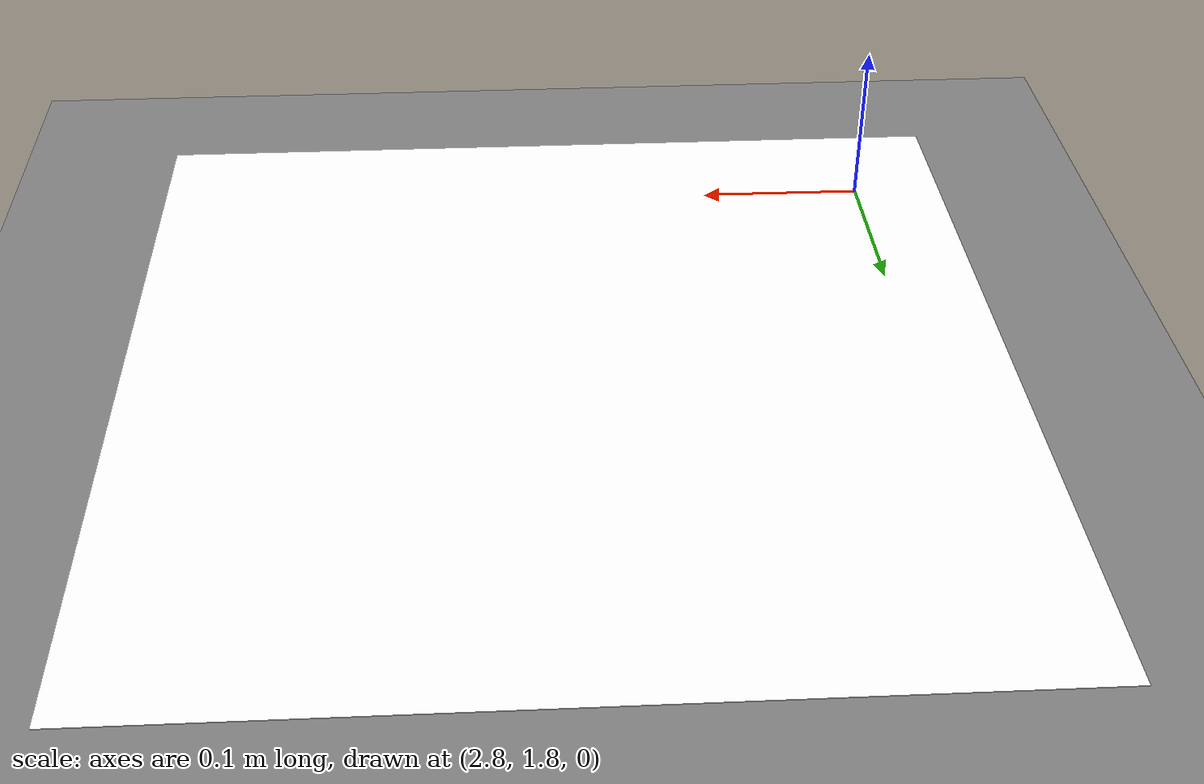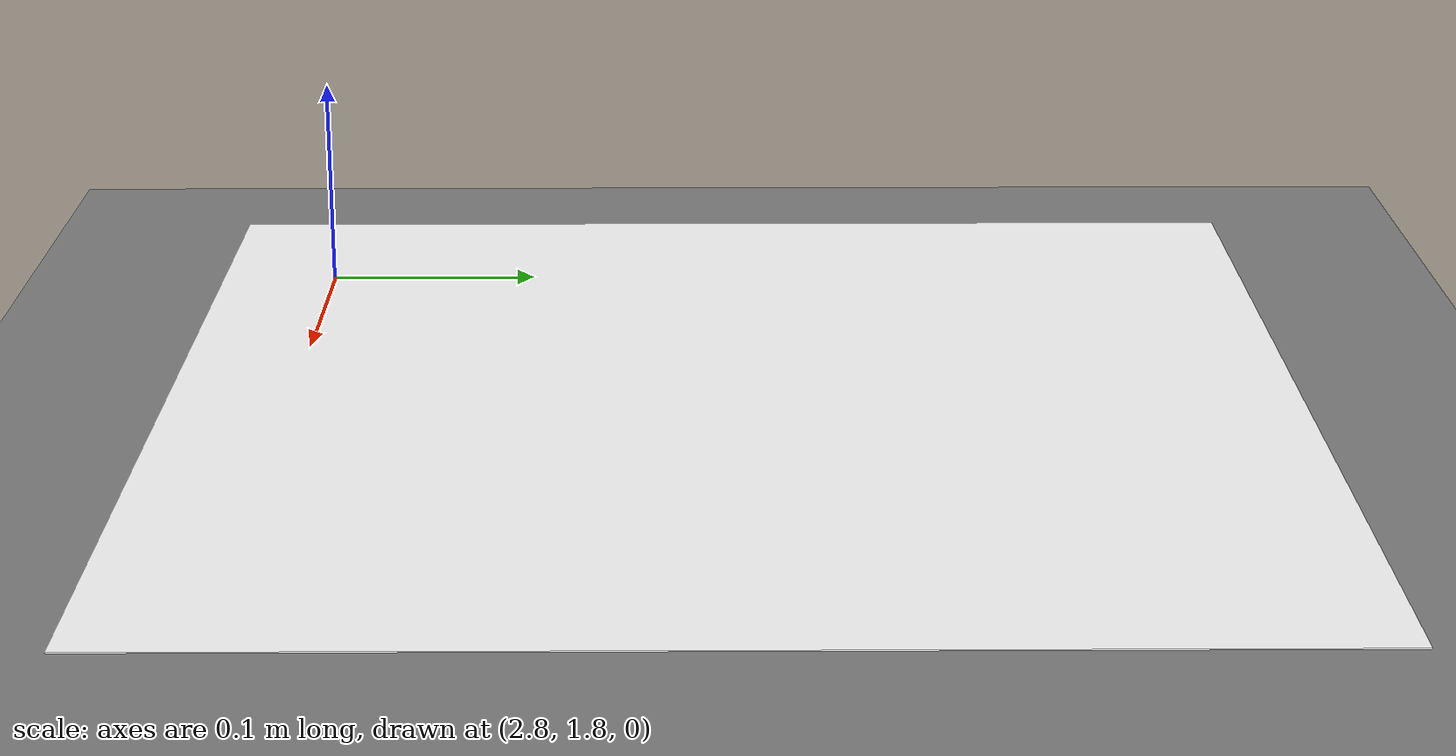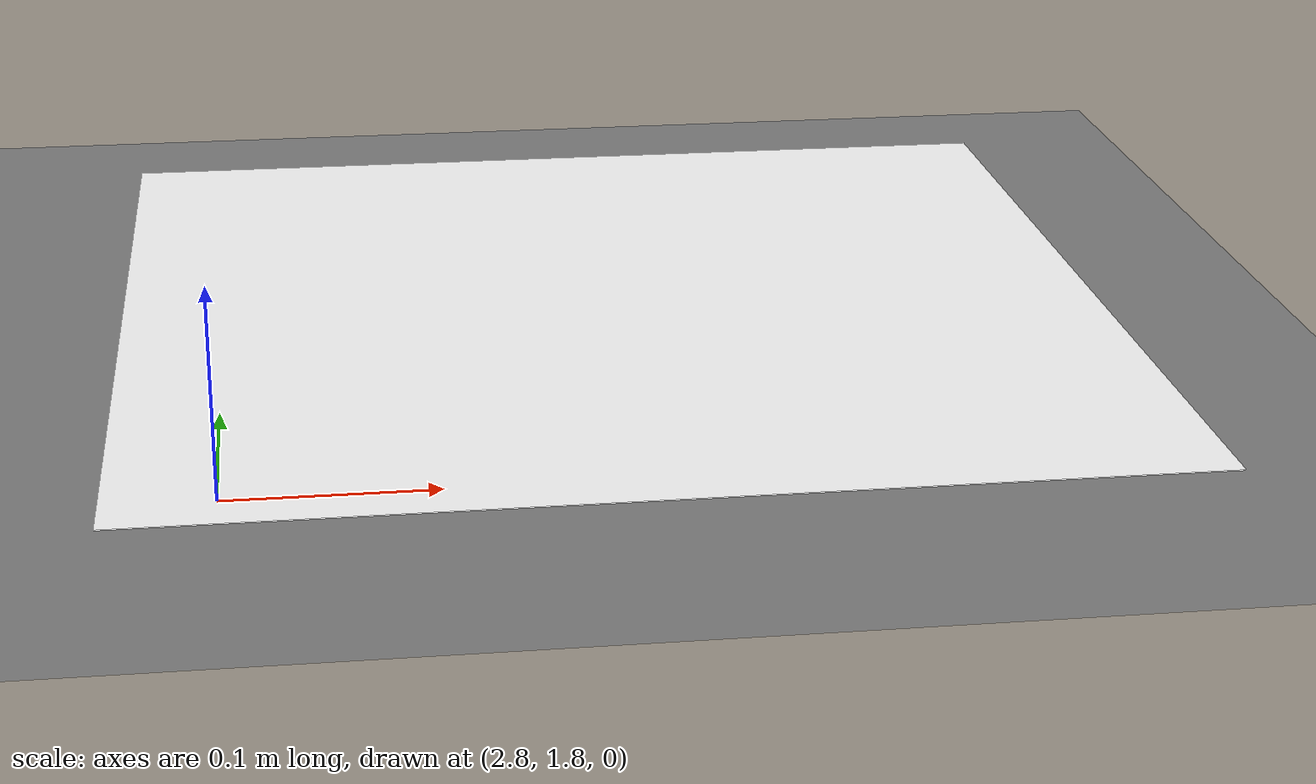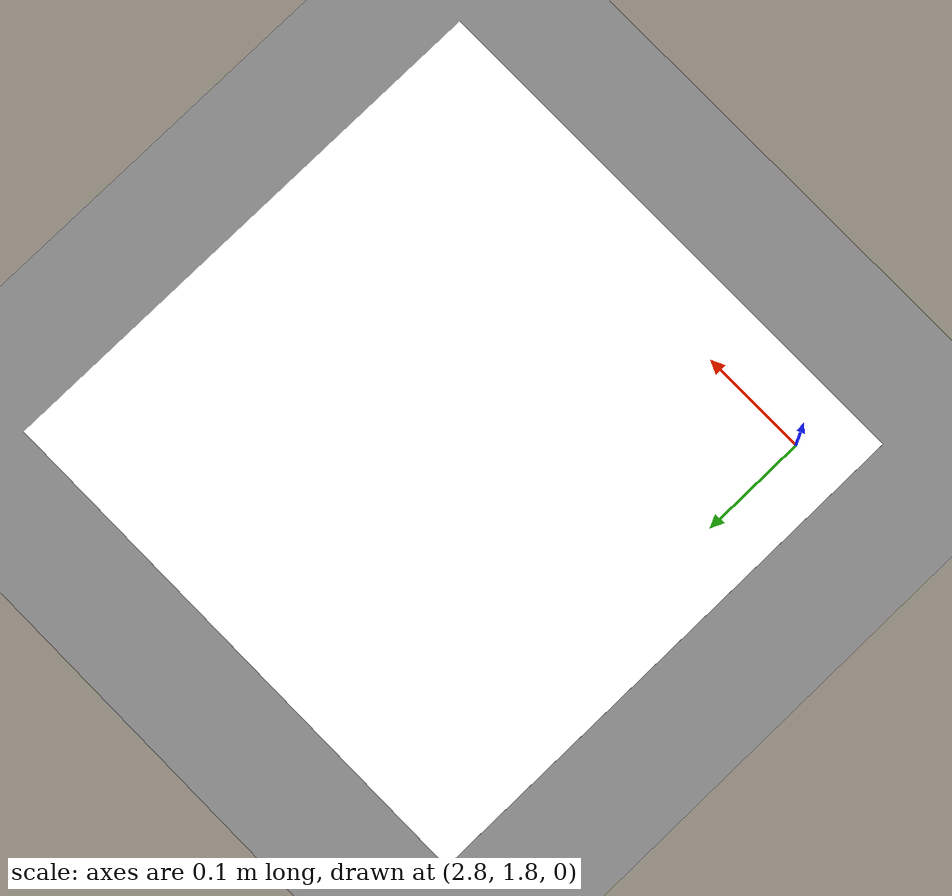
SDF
<?xml version="1.0" encoding="UTF-8"?>
<sdf version="1.9">
  <world name="aruco_landing">
    <physics type="ode">
      <max_step_size>0.004</max_step_size>
      <real_time_factor>1.0</real_time_factor>
      <real_time_update_rate>250</real_time_update_rate>
    </physics>
    <gravity>0 0 -9.8</gravity>
    <magnetic_field>6e-06 2.3e-05 -4.2e-05</magnetic_field>
    <atmosphere type="adiabatic"/>

    <!-- Scene: bright ambient for reliable ArUco detection -->
    <scene>
      <grid>false</grid>
      <ambient>0.8 0.8 0.8 1</ambient>
      <background>0.7 0.7 0.7 1</background>
      <shadows>false</shadows>
    </scene>

    <!-- Ground plane -->
    <model name="ground_plane">
      <static>true</static>
      <link name="link">
        <collision name="collision">
          <geometry>
            <plane>
              <normal>0 0 1</normal>
              <size>1 1</size>
            </plane>
          </geometry>
          <surface>
            <friction><ode/></friction>
            <bounce/>
            <contact/>
          </surface>
        </collision>
        <visual name="visual">
          <geometry>
            <plane>
              <normal>0 0 1</normal>
              <size>500 500</size>
            </plane>
          </geometry>
          <material>
            <ambient>0.5 0.5 0.5 1</ambient>
            <diffuse>0.5 0.5 0.5 1</diffuse>
            <specular>0.5 0.5 0.5 1</specular>
          </material>
        </visual>
        <pose>0 0 0 0 0 0</pose>
        <inertial>
          <pose>0 0 0 0 0 0</pose>
          <mass>1</mass>
          <inertia>
            <ixx>1</ixx><ixy>0</ixy><ixz>0</ixz>
            <iyy>1</iyy><iyz>0</iyz><izz>1</izz>
          </inertia>
        </inertial>
        <enable_wind>false</enable_wind>
      </link>
      <pose>0 0 0 0 0 0</pose>
      <self_collide>false</self_collide>
    </model>

    <!-- Sunlight -->
    <light name="sunUTC" type="directional">
      <pose>0 0 500 0 0 0</pose>
      <cast_shadows>false</cast_shadows>
      <intensity>1</intensity>
      <direction>0.001 0.625 -0.78</direction>
      <diffuse>0.904 0.904 0.904 1</diffuse>
      <specular>0.271 0.271 0.271 1</specular>
      <attenuation>
        <range>2000</range>
        <linear>0</linear>
        <constant>1</constant>
        <quadratic>0</quadratic>
      </attenuation>
    </light>

    <!-- GPS coordinates (same as default world) -->
    <spherical_coordinates>
      <surface_model>EARTH_WGS84</surface_model>
      <world_frame_orientation>ENU</world_frame_orientation>
      <latitude_deg>47.397971057728974</latitude_deg>
      <longitude_deg> 8.546163739800146</longitude_deg>
      <elevation>0</elevation>
    </spherical_coordinates>

    <include>
      <uri>model://arucotag</uri>
      <name>landing_pad</name>
      <pose>3.0 2.0 0 0 0 0</pose>
    </include>

  </world>
</sdf>

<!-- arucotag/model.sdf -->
<sdf version='1.9'>
  <model name='arucotag'>
    <static>true</static>
    <pose>0 0 0 0 0 0</pose>
    <link name='base'>
      <collision name='base_collision'>
        <pose>0 0 0.005 0 0 0</pose>
        <geometry>
          <box>
            <size>0.5 0.5 0.01</size>
          </box>
        </geometry>
      </collision>
      <visual name='base_visual'>
        <pose>0 0 0.012 0 0 0</pose>
        <geometry>
          <plane>
            <normal>0 0 1</normal>
            <size>0.5 0.5</size>
          </plane>
        </geometry>
        <material>
          <diffuse>1 1 1 1</diffuse>
          <specular>0.4 0.4 0.4 1</specular>
          <pbr>
            <metal>
              <albedo_map>model://arucotag/arucotag.png</albedo_map>
            </metal>
          </pbr>
        </material>
      </visual>
    </link>
  </model>
</sdf>
